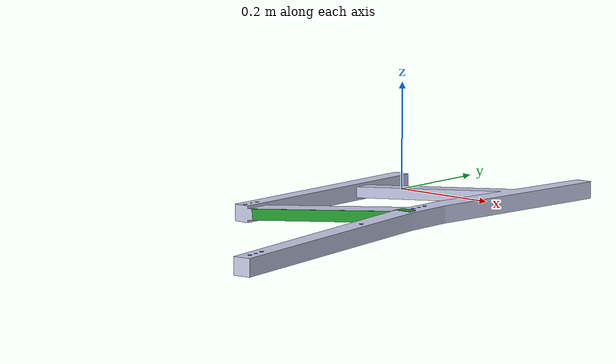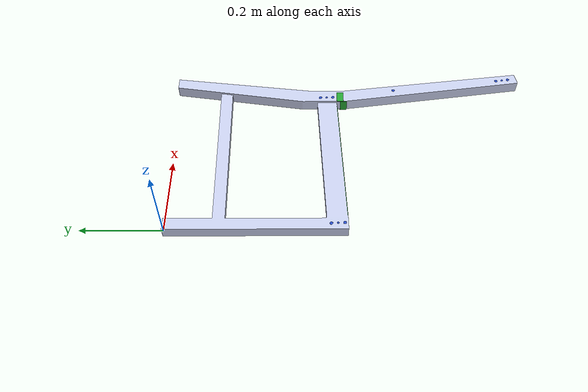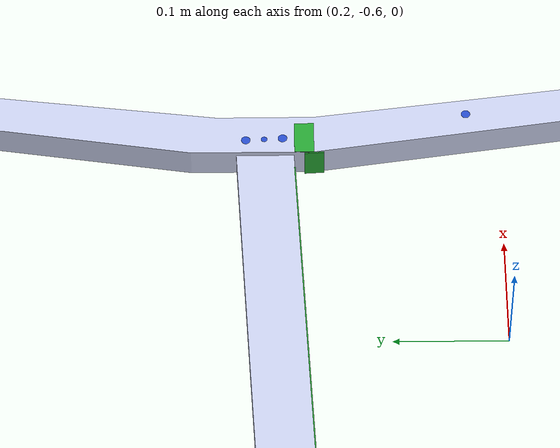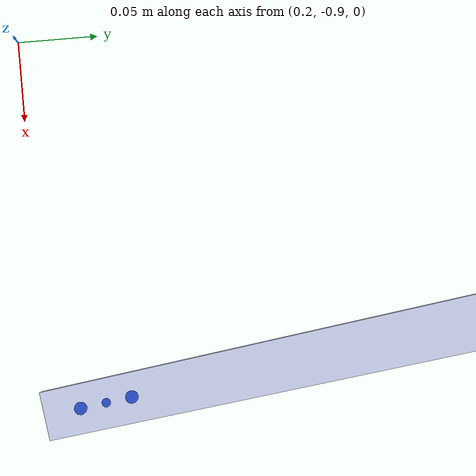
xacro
<?xml version="1.0"?>
<robot name="part6" xmlns:xacro="http://www.ros.org/wiki/xacro">
	<xacro:include filename="$(find object_description)/chair_urdf/chair_part6.SLDPRT.urdf"/>
	<xacro:include filename="$(find object_description)/chair_xacro_re/for_assemble_macro.xacro"/>

	<xacro:property name="x_offset" value="0.0"/>
	<xacro:property name="y_offset" value="0.0"/>
	<xacro:property name="z_offset" value="0.015"/>

	<xacro:hole_definition link_name="part6 hole 101350-1 1"
						   length="0.01"
						   radius="0.004"
						   x="${(0.002166 + x_offset)}" y="${-(0.42666 + y_offset)}" z="${(0.01 + z_offset)}"
						   rx="0" ry="${-pi}" rz="0"
						   parent="chair part6.SLDPRT"/>

	<xacro:hole_definition link_name="part6 hole 101350-1 2"
						   length="0.01"
						   radius="0.004"
						   x="${(0.000492 + x_offset)}" y="${-(0.394704 + y_offset)}" z="${(0.01 + z_offset)}"
						   rx="0" ry="${-pi}" rz="0"
						   parent="chair part6.SLDPRT"/>

	<xacro:hole_definition link_name="part6 hole 101350-1 3"
						   length="0.01"
						   radius="0.004"
						   x="${(0.369042 + x_offset)}" y="${-(0.407433 + y_offset)}" z="${(0.045 + z_offset)}"
						   rx="0" ry="${-pi}" rz="0"
						   parent="chair part6.SLDPRT"/>

	<xacro:hole_definition link_name="part6 hole 101350-1 4"
						   length="0.01"
						   radius="0.004"
						   x="${(0.367368 + x_offset)}" y="${-(0.375477 + y_offset)}" z="${(0.045 + z_offset)}"
						   rx="0" ry="${-pi}" rz="0"
						   parent="chair part6.SLDPRT"/>

	<xacro:hole_definition link_name="part6 hole 101350-1 5"
						   length="0.015"
						   radius="0.004"
						   x="${(0.393244 + x_offset)}" y="${-(0.567391 + y_offset)}" z="${(0.0425 + z_offset)}"
						   rx="0" ry="${-pi}" rz="0"
						   parent="chair part6.SLDPRT"/>

	<xacro:hole_definition link_name="part6 hole 101350-1 6"
						   length="0.015"
						   radius="0.004"
						   x="${(0.427122 + x_offset)}" y="${-(0.844371 + y_offset)}" z="${(0.0425 + z_offset)}"
						   rx="0" ry="${-pi}" rz="0"
						   parent="chair part6.SLDPRT"/>

	<xacro:hole_definition link_name="part6 hole 101350-1 7"
						   length="0.015"
						   radius="0.004"
						   x="${(0.431575 + x_offset)}" y="${-(0.87606 + y_offset)}" z="${(0.0425 + z_offset)}"
						   rx="0" ry="${-pi}" rz="0"
						   parent="chair part6.SLDPRT"/>

	<xacro:hole_definition link_name="part6 hole 104322-1 8"
						   length="0.03"
						   radius="0.00275"
						   x="${(0.001329 + x_offset)}" y="${-(0.410682 + y_offset)}" z="${(0.0 + z_offset)}"
						   rx="0" ry="${0}" rz="0"
						   parent="chair part6.SLDPRT"/>

	<xacro:hole_definition link_name="part6 hole 104322-1 9"
						   length="0.03"
						   radius="0.00275"
						   x="${(0.368205 + x_offset)}" y="${-(0.391455 + y_offset)}" z="${(0.035 + z_offset)}"
						   rx="0" ry="${0}" rz="0"
						   parent="chair part6.SLDPRT"/>

	<xacro:hole_definition link_name="part6 hole 104322-1 10"
						   length="0.03"
						   radius="0.00275"
						   x="${(0.429349 + x_offset)}" y="${-(0.860216 + y_offset)}" z="${(0.035 + z_offset)}"
						   rx="0" ry="${0}" rz="0"
						   parent="chair part6.SLDPRT"/>

	<xacro:surface_definition link_name="part6 surface part1-4 1"
							  box_x="0.03" box_y="0.017" box_z="0.001"
							  x="${0.369534 + x_offset}" y="${-(0.852206/2 + y_offset)}" z="${0.05 + z_offset}"
							  rx="0" ry="0" rz="0"
							  parent="chair part6.SLDPRT"/>

	<xacro:surface_definition link_name="part6 surface part1-5 2"
							  box_x="0.32" box_y="0.02" box_z="0.001"
							  x="${0.369534/2 + x_offset}" y="${-(0.852206/2 + y_offset)}" z="${0.0175 + z_offset}"
							  rx="${pi/2}" ry="${(-90+84.115)*2*pi/360}" rz="${(3)*2*pi/360}"
							  parent="chair part6.SLDPRT"/>

	<xacro:surface_definition link_name="part6 surface part1-6 3"
							  box_x="0.03" box_y="0.017" box_z="0.001"
							  x="${0.354534 - 0.017794*cos(3/180*pi)*cos(87/180*pi) + x_offset}" y="${-(0.417206 + 0.017794*cos(3/180*pi)*cos(3/180*pi) + y_offset)}" z="${0.035 + z_offset}"
							  rx="0" ry="${-pi/2}" rz="${pi/180*3}"
							  parent="chair part6.SLDPRT"/>

</robot>

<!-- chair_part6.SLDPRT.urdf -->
<robot
  name="chair part6.SLDPRT">
  <link
    name="chair part6.SLDPRT">
    <inertial>
      <origin
        xyz="0.25265 -0.35064 0.037466"
        rpy="1.5707963267949 0 0" />
      <mass
        value="1.8822" />
      <inertia
        ixx="0.092184"
        ixy="-0.0046305"
        ixz="-0.028222"
        iyy="0.14409"
        iyz="0.00238449999999999"
        izz="0.052969" />
    </inertial>
    <visual>
      <origin
        xyz="0 0 0.015"
        rpy="3.141592653 0 0" />
      <geometry>
        <mesh
          filename="package://object_description/chair_meshes/chair part6.SLDPRT.STL" />
      </geometry>
      <material
        name="">
        <color
          rgba="0.79216 0.81961 0.93333 1" />
        <texture
          filename="package://object_description/textures/" />
      </material>
    </visual>
    <collision>
      <origin
        xyz="0 0 0.015"
        rpy="3.141592653 0 0" />
      <geometry>
        <mesh
          filename="package://object_description/chair_meshes/chair part6.SLDPRT.STL" />
      </geometry>
      <surface>
      <contact>
          <ode>
            <kp>1.0E+15</kp>
            <kd>1.0E+13</kd>
          </ode>
        </contact>
      </surface>
    </collision>
  </link>
  <gazebo reference="chair part6.SLDPRT">
    <material>Gazebo/White</material>
    <kp>100000.0</kp>
    <kd>1.0</kd>
    <mu1>100000</mu1>
    <mu2>100000</mu2>
    <maxVel>0</maxVel>
    <minDepth>0.00</minDepth>
  </gazebo>
</robot>

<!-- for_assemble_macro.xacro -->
<robot xmlns:xacro="http://wiki.ros.org/xacro">

	<xacro:macro name="hole_definition" params="link_name
												length radius
												x y z rx ry rz
												parent">
		<link name="${link_name}">
			<visual>
				<origin xyz="0 0 0" rpy="0 0 0"/>
				<geometry>
					<cylinder length="${length}" radius="${radius}"/>
				</geometry>
			</visual>
		</link>

		<joint name="${link_name} joint" type="fixed">
			<origin xyz="${x} ${y} ${z}" rpy="${rx} ${ry} ${rz}"/>
			<parent link="${parent}"/>
			<child link="${link_name}"/>
		</joint>

		<gazebo reference="${link_name}">
			<material>Gazebo/BlueTransparent</material>
		</gazebo>
	</xacro:macro>

	<xacro:macro name="shaft_definition" params="link_name
												length radius
												x y z rx ry rz
												parent">
		<link name="${link_name}">
			<visual>
				<origin xyz="0 0 0" rpy="0 0 0"/>
				<geometry>
					<cylinder length="${length}" radius="${radius}"/>
				</geometry>
			</visual>
		</link>

		<joint name="${link_name} joint" type="fixed">
			<origin xyz="${x} ${y} ${z}" rpy="${rx} ${ry} ${rz}"/>
			<parent link="${parent}"/>
			<child link="${link_name}"/>
		</joint>

		<gazebo reference="${link_name}">
			<material>Gazebo/RedTransparent</material>
		</gazebo>
	</xacro:macro>

	<xacro:macro name="surface_definition" params="link_name
												   box_x box_y box_z
												   x y z rx ry rz
												   parent">
		<link name="${link_name}">
			<visual>
				<origin xyz="0 0 0" rpy="0 0 0"/>
				<geometry>
					<box size="${box_x} ${box_y} ${box_z}"/>
				</geometry>
			</visual>
		</link>

		<joint name="${link_name} joint" type="fixed">
			<origin xyz="${x} ${y} ${z}" rpy="${rx} ${ry} ${rz}"/>
			<parent link="${parent}"/>
			<child link="${link_name}"/>
		</joint>

		<gazebo reference="${link_name}">
			<material>Gazebo/GreenTransparent</material>
		</gazebo>
	</xacro:macro>

</robot>
